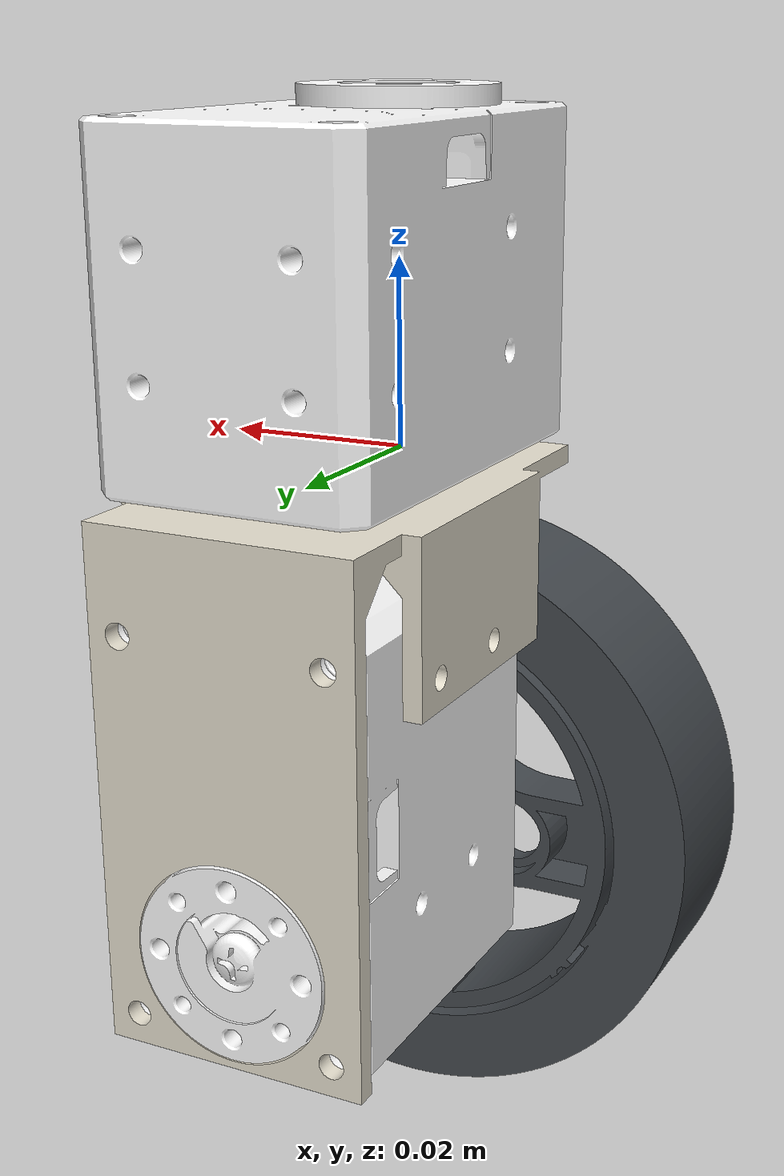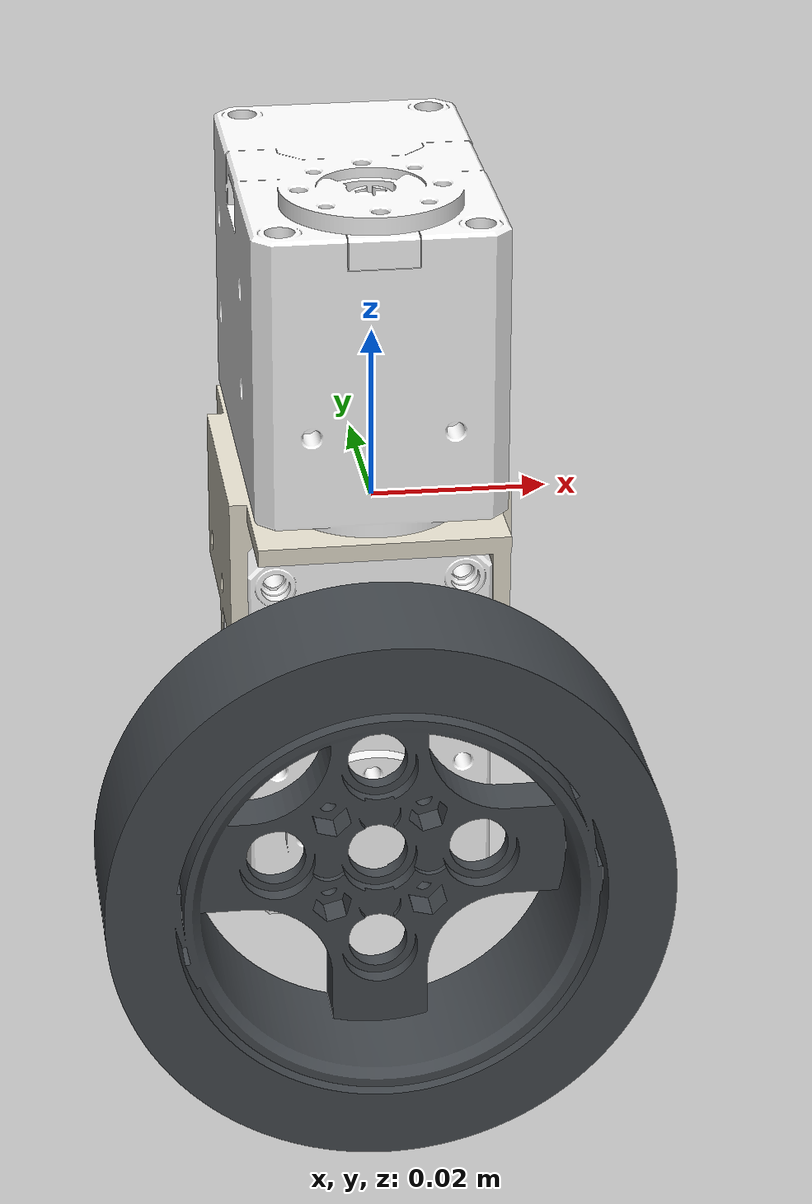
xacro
<?xml version="1.0"?>

<robot xmlns:xacro="http://www.ros.org/wiki/xacro"
    xmlns:sensor="http://playerstage.sourceforge.net/gazebo/xmlschema/#sensor"
  xmlns:controller="http://playerstage.sourceforge.net/gazebo/xmlschema/#controller"
  xmlns:interface="http://playerstage.sourceforge.net/gazebo/xmlschema/#interface"
    name="swerve_drive">

    <link name="swerve_base_link" />

    <joint name="swerve_base_joint" type="fixed">
      <parent link="swerve_base_link"/>
      <child link="xl430_steer"/>
      <origin xyz="0 0 0"/>
    </joint>

    <link name="xl430_steer">
      <visual>
        <origin rpy="0 ${pi} ${pi}" xyz="0 0 0.018"/>
        <geometry>
          <mesh filename="package://swerve_drive/mesh/XL430.dae"/>
        </geometry>
      </visual>
      <collision>
        <origin rpy="0 ${pi} ${pi}" xyz="0 0 0.018"/>
        <geometry>
          <mesh filename="package://swerve_drive/mesh/XL430.dae"/>
        </geometry>
      </collision>
    </link>

    <joint name="steer" type="revolute">
      <parent link="xl430_steer"/>
      <child link="xl430_bracket"/>
      <origin rpy="0 0 0" xyz="0 -0.0003 -0.0435"/>
      <axis xyz="0 0 -1" />
      <limit effort="300" velocity="0.1" lower="-1.57" upper="1.57"/>
    </joint>

    <link name="xl430_bracket">
      <visual>
        <origin rpy="0 0 0" xyz="0 -0.001 0"/>
        <geometry>
          <mesh filename="package://swerve_drive/mesh/XL430_BRACKET.dae"/>
        </geometry>
      </visual>
      <collision>
        <origin rpy="0 0 0" xyz="0 -0.001 0"/>
        <geometry>
          <mesh filename="package://swerve_drive/mesh/XL430_BRACKET.dae"/>
        </geometry>
      </collision>
    </link>

    <joint name="bracket2drive" type="fixed">
      <parent link="xl430_bracket"/>
      <child link="xl430_drive"/>
      <origin xyz="0 0 0"/>
      <axis xyz="0 1 0" />
    </joint>

    <link name="xl430_drive">
      <visual>
        <origin rpy="${pi/2} ${pi} 0" xyz="0 0.018 0.0"/>
        <geometry>
          <mesh filename="package://swerve_drive/mesh/XL430.dae"/>
        </geometry>
      </visual>
      <collision>
        <origin rpy="${pi/2} ${pi} 0" xyz="0 0.018 0.0"/>
        <geometry>
          <mesh filename="package://swerve_drive/mesh/XL430.dae"/>
        </geometry>
      </collision>
    </link>

    <joint name="drive" type="continuous">
      <parent link="xl430_drive"/>
      <child link="tb3_wheel"/>
      <origin rpy="0 0 0" xyz="0 0 0"/>
      <axis xyz="0 -1 0" />
    </joint>

    <link name="tb3_wheel">
      <visual>
        <origin rpy="0 0 ${pi}" xyz="0 -0.01 0"/>
        <geometry>
          <mesh filename="package://swerve_drive/mesh/TB3_WHEEL.dae"/>
        </geometry>
      </visual>
      <collision>
        <origin rpy="0 0 ${pi}" xyz="0 -0.01 0"/>
        <geometry>
          <mesh filename="package://swerve_drive/mesh/TB3_WHEEL.dae"/>
        </geometry>
      </collision>
    </link>

</robot>
